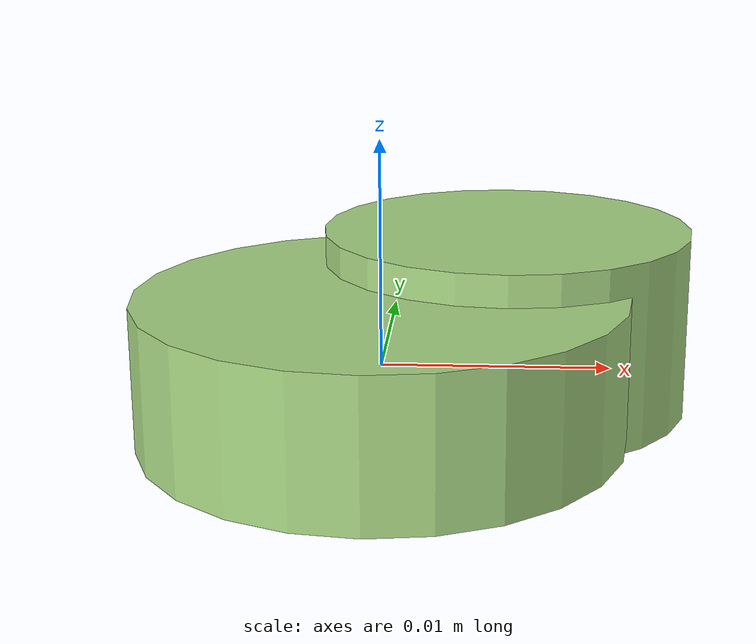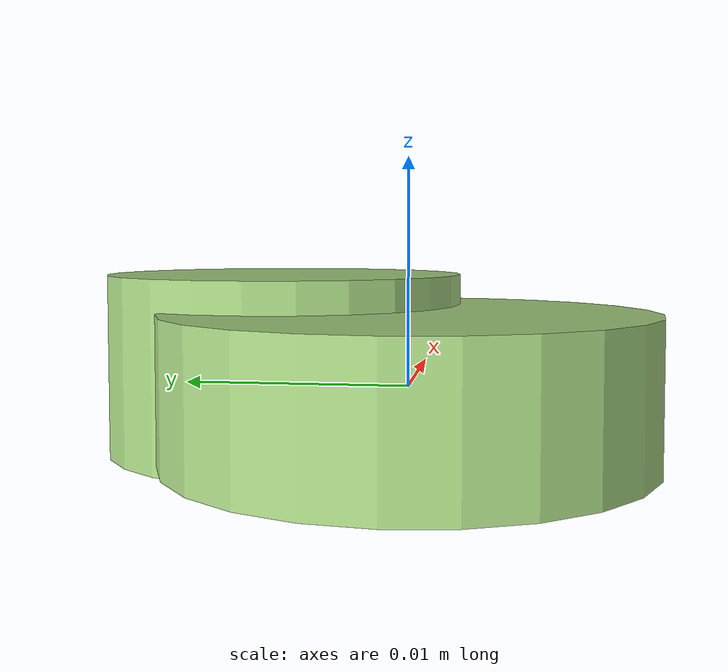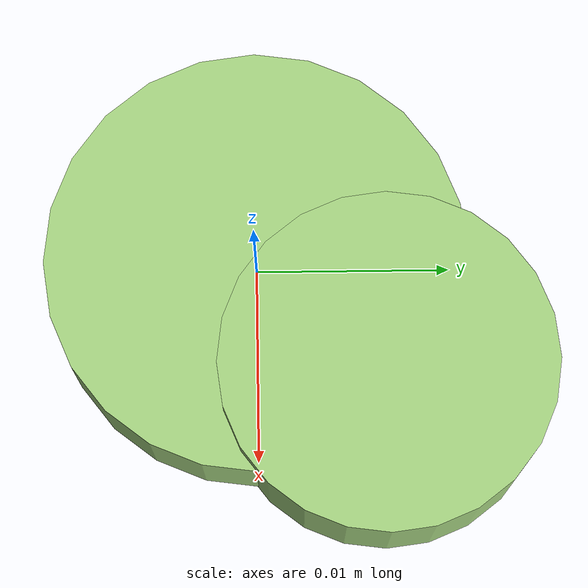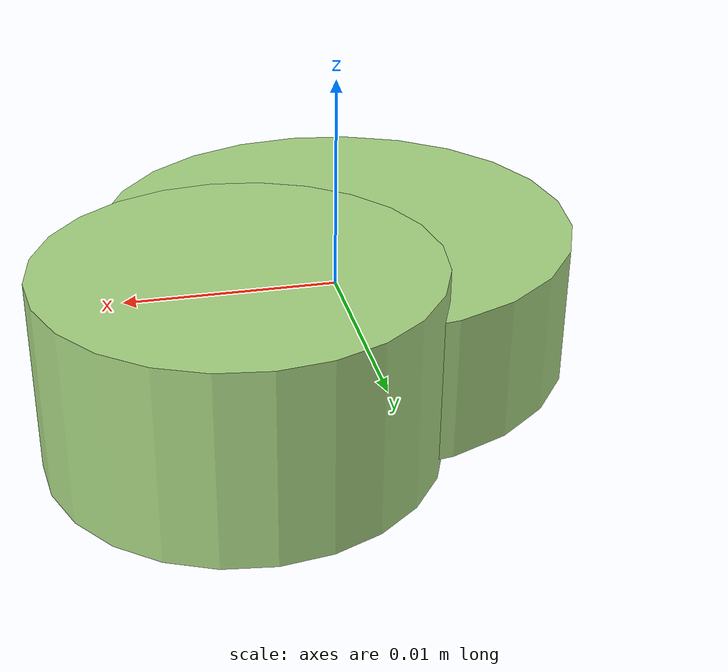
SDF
<?xml version="1.0" ?>
<!-- |    This document was autogenerated by xmacro from data/veggie_template/veggie_base.sdf.xacro  | -->
<!-- |    EDITING THIS FILE BY HAND IS NOT RECOMMENDED                                               | -->
<sdf version="1.8">
	<!-- Parameters -->
	<!-- Base -->
	<!-- Joint 0 -->
	<!-- Link 1 -->
	<!-- Joint 1 -->
	<!-- Link 2 -->
	<!-- Primitives -->
	<!-- All dimensions are half -->
	<!-- Object -->
	<model name="veggie">
		<!-- link0 -->
		<link name="link0">
			<inertial>
				<mass>0.0024082816894315812</mass>
				<inertia>
					<ixx>7.94575656929411e-08</ixx>
					<ixy>0</ixy>
					<ixz>0</ixz>
					<iyy>7.94575656929411e-08</iyy>
					<iyz>0</iyz>
					<izz>1.4193996640255645e-07</izz>
				</inertia>
			</inertial>
			<visual name="link0_visual">
				<pose>0 0 0 0 0 0</pose>
				<geometry>
					<cylinder>
						<radius>0.010857096677617091</radius>
						<length>0.006503228073249141</length>
					</cylinder>
				</geometry>
				<material>
					<ambient>0.659 0.839 0.514 1</ambient>
					<diffuse>0.659 0.839 0.514 1</diffuse>
					<specular>0 0 0 0</specular>
					<emissive>0 0 0 1</emissive>
				</material>
			</visual>
			<collision name="link0_collision">
				<pose>0 0 0 0 0 0 </pose>
				<geometry>
					<cylinder>
						<radius>0.010857096677617091</radius>
						<length>0.006503228073249141</length>
					</cylinder>
				</geometry>
			</collision>
		</link>
		<!-- link1 -->
		<joint name="joint0" type="fixed">
			<pose relative_to="link0">0.005492930201226077 0.006625651445497893 0.00038948153125551376 0.0 0.0 0.0</pose>
			<parent>link0</parent>
			<child>link1</child>
		</joint>
		<link name="link1">
			<pose relative_to="joint0">0 0 0 0 0 0</pose>
			<inertial>
				<mass>0.0020230080614321026</mass>
				<inertia>
					<ixx>5.030479430613781e-08</ixx>
					<ixy>0</ixy>
					<ixz>0</ixz>
					<iyy>5.030479430613781e-08</iyy>
					<iyz>0</iyz>
					<izz>7.554448247714669e-08</izz>
				</inertia>
			</inertial>
			<visual name="link1_visual">
				<pose>0 0 0 0 0 0</pose>
				<geometry>
					<cylinder>
						<radius>0.008642065753413046</radius>
						<length>0.00862207095337221</length>
					</cylinder>
				</geometry>
				<material>
					<ambient>0.659 0.839 0.514 1</ambient>
					<diffuse>0.659 0.839 0.514 1</diffuse>
					<specular>0 0 0 0</specular>
					<emissive>0 0 0 1</emissive>
				</material>
			</visual>
			<collision name="link1_collision">
				<pose>0 0 0 0 0 0 </pose>
				<geometry>
					<cylinder>
						<radius>0.008642065753413046</radius>
						<length>0.00862207095337221</length>
					</cylinder>
				</geometry>
			</collision>
		</link>
		<!-- link2 -->
	</model>
</sdf>
